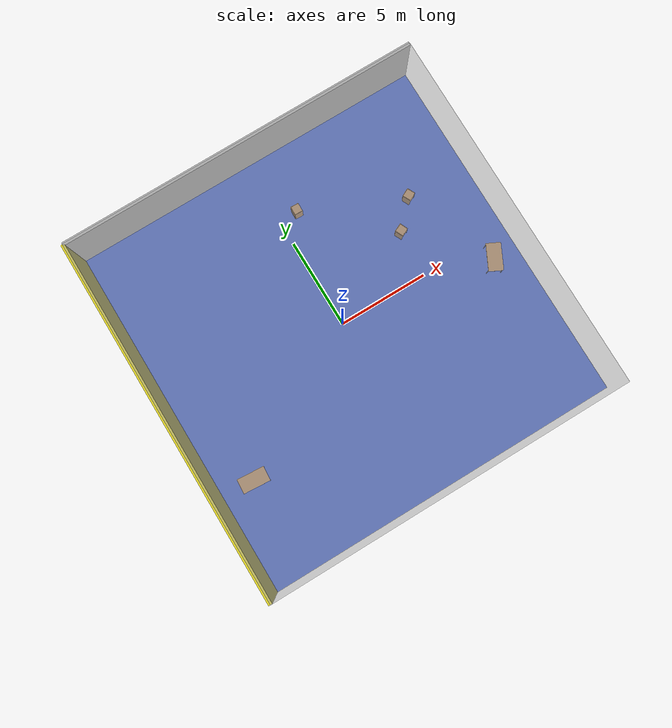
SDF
<sdf version="1.4">
 <world name="default">
  <physics type="ode">
   <max_step_size>0.001</max_step_size>
   <real_time_factor>1</real_time_factor>
   <real_time_update_rate>1000</real_time_update_rate>
   <gravity>0 0 -9.8</gravity>
  </physics>
  <scene><ambient>0.4 0.4 0.4 1</ambient><background>0.7 0.7 0.7 1</background><shadows>1</shadows></scene>
  <model name="Surrounding">
   <static>1</static>
   <link name="Ceiling">
    <collision name="Ceiling_Collision"><geometry><box><size>20 20 0.1</size></box></geometry></collision>
    <visual name="Ceiling_Visual">
     <geometry><box><size>20 20 0.1</size></box></geometry>
     <material>
      <script><uri>file://media/materials/scripts/gazebo.material</uri><name>Gazebo/GreyTransparent</name></script>
     </material>
    </visual>
    <pose>0 0 4.05 0 0 0</pose>
   </link>
   <link name="Wall_South">
    <collision name="Wall_South_Collision">
     <geometry><box><size>20 0 4</size></box></geometry>
     <pose>0 0 2 0 -0 0</pose>
    </collision>
    <visual name="Wall_South_Visual">
     <pose>0 0 2 0 -0 0</pose>
     <geometry><box><size>20 0 4</size></box></geometry>
     <material>
      <script>
       <uri>file://media/materials/scripts/gazebo.material</uri>
       <name>Gazebo/YellowTransparent</name>
      </script>
     </material>
    </visual>
    <velocity_decay><linear>0</linear><angular>0</angular></velocity_decay>
    <pose>0 -10 0 0 -0 0</pose>
   </link>
   <link name="Wall_East">
    <collision name="Wall_21_Collision">
     <geometry><box><size>20 0 4</size></box></geometry>
     <pose>0 0 2 0 -0 0</pose>
    </collision>
    <visual name="Wall_21_Visual">
     <pose>0 0 2 0 -0 0</pose>
     <geometry><box><size>20 0 4</size></box></geometry>
     <material>
      <script>
       <uri>file://media/materials/scripts/gazebo.material</uri>
       <name>Gazebo/OrangeTransparent</name>
      </script>
     </material>
    </visual>
    <velocity_decay><linear>0</linear><angular>0</angular></velocity_decay>
    <pose>10 0 0 0 -0 1.5708</pose>
   </link>
   <link name="Wall_North">
    <collision name="Wall_22_Collision">
     <geometry><box><size>20 0.2 4</size></box></geometry>
     <pose>0 0 2 0 -0 0</pose>
    </collision>
    <visual name="Wall_22_Visual">
     <pose>0 0 2 0 -0 0</pose>
     <geometry><box><size>20 0.2 4</size></box></geometry>
     <material>
      <script><uri>file://media/materials/scripts/gazebo.material</uri><name>Gazebo/CloudySky</name></script>
     </material>
    </visual>
    <velocity_decay><linear>0</linear><angular>0</angular></velocity_decay>
    <pose>0 10 0 0 -0 0</pose>
   </link>
   <link name="Wall_West">
    <collision name="Wall_23_Collision">
     <geometry><box><size>20 0.2 4</size></box></geometry>
     <pose>0 0 2 0 -0 0</pose>
    </collision>
    <visual name="Wall_23_Visual">
     <pose>0 0 2 0 -0 0</pose>
     <geometry><box><size>20 0.2 4</size></box></geometry>
     <material>
      <script><uri>file://media/materials/scripts/gazebo.material</uri><name>Gazebo/Yellow</name></script>
     </material>
    </visual>
    <velocity_decay><linear>0</linear><angular>0</angular></velocity_decay>
    <pose>-10 0 0 0 0 -1.5708</pose>
   </link>
   <link name="Ground_link">
    <collision name="collision">
     <pose>0 0 .05 0 -0 0</pose>
     <geometry><box><size>20 20 0.1</size></box></geometry>
    </collision>
    <visual name="visual">
     <pose>0 0 .05 0 -0 0</pose>
     <geometry><box><size>20 20 0.1</size></box></geometry>
     <material>
      <script><uri>file://media/materials/scripts/gazebo.material</uri><name>Gazebo/BlueLaser</name></script>
     </material>
    </visual>
   </link>
   <static>1</static>
  </model>
  <spherical_coordinates>
   <surface_model>EARTH_WGS84</surface_model>
   <latitude_deg>0</latitude_deg>
   <longitude_deg>0</longitude_deg>
   <elevation>0</elevation>
   <heading_deg>0</heading_deg>
  </spherical_coordinates>
  <light name="lightball_0" type="diffuse">
   <diffuse>0.8 0.8 0.8 1</diffuse>
   <specular>0.2 0.2 0.2 1</specular>
   <attenuation>
    <range>100</range>
    <constant>0.7</constant>
    <linear>0.01</linear>
    <quadratic>0.001</quadratic>
   </attenuation>
   <direction>-0.5 0.1 -0.9</direction>
   <pose>9.37528162601 -2.22802639416 3.4810622793 0 0 0</pose>
  </light>
  <light name="lightball_1" type="diffuse">
   <diffuse>0.8 0.8 0.8 1</diffuse>
   <specular>0.2 0.2 0.2 1</specular>
   <attenuation>
    <range>100</range>
    <constant>0.7</constant>
    <linear>0.01</linear>
    <quadratic>0.001</quadratic>
   </attenuation>
   <direction>-0.5 0.1 -0.9</direction>
   <pose>1.97921127919 -1.10898941533 3.27158633737 0 0 0</pose>
  </light>
  <include><uri>model://table</uri><pose>-8.03363344337 -4.58788490743 0 0 0 3.06965282005</pose></include>
  <include><uri>model://cabinet</uri><pose>1.00738062585 6.32114969001 0 0 0 3.10891634616</pose></include>
  <include><uri>model://cabinet</uri><pose>5.11698972903 2.51590057127 0 0 0 2.00233043755</pose></include>
  <include><uri>model://table</uri><pose>8.50680798594 -1.21738615688 0 0 0 1.10831165844</pose></include>
  <include><uri>model://cabinet</uri><pose>6.45168061448 3.92910564522 0 0 0 2.03867620664</pose></include>
 </world>
</sdf>

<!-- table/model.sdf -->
<sdf version="1.5">
  <model name="table">
    <static>true</static>
    <link name="link">
      <collision name="surface">
        <pose>0 0 1.0 0 0 0</pose>
        <geometry>
          <box>
            <size>1.5 0.8 0.03</size>
          </box>
        </geometry>
        <surface>
          <friction>
            <ode>
              <mu>0.6</mu>
              <mu2>0.6</mu2>
            </ode>
          </friction>
        </surface>
      </collision>
      <visual name="visual1">
        <pose>0 0 1.0 0 0 0</pose>
        <geometry>
          <box>
            <size>1.5 0.8 0.03</size>
          </box>
        </geometry>
        <material>
          <script>
            <uri>model://media/materials/scripts/gazebo.material</uri>
            <name>Gazebo/Wood</name>
          </script>
        </material>
      </visual>
      <collision name="front_left_leg">
        <pose>0.68 0.38 0.5 0 0 0</pose>
        <geometry>
          <cylinder>
            <radius>0.02</radius>
            <length>1.0</length>
          </cylinder>
        </geometry>
      </collision>
      <visual name="front_left_leg">
        <pose>0.68 0.38 0.5 0 0 0</pose>
        <geometry>
          <cylinder>
            <radius>0.02</radius>
            <length>1.0</length>
          </cylinder>
        </geometry>
        <material>
          <script>
            <uri>model://media/materials/scripts/gazebo.material</uri>
            <name>Gazebo/Grey</name>
          </script>
        </material>
      </visual>
      <collision name="front_right_leg">
        <pose>0.68 -0.38 0.5 0 0 0</pose>
        <geometry>
          <cylinder>
            <radius>0.02</radius>
            <length>1.0</length>
          </cylinder>
        </geometry>
      </collision>
      <visual name="front_right_leg">
        <pose>0.68 -0.38 0.5 0 0 0</pose>
        <geometry>
          <cylinder>
            <radius>0.02</radius>
            <length>1.0</length>
          </cylinder>
        </geometry>
        <material>
          <script>
            <uri>model://media/materials/scripts/gazebo.material</uri>
            <name>Gazebo/Grey</name>
          </script>
        </material>
      </visual>
      <collision name="back_right_leg">
        <pose>-0.68 -0.38 0.5 0 0 0</pose>
        <geometry>
          <cylinder>
            <radius>0.02</radius>
            <length>1.0</length>
          </cylinder>
        </geometry>
      </collision>
      <visual name="back_right_leg">
        <pose>-0.68 -0.38 0.5 0 0 0</pose>
        <geometry>
          <cylinder>
            <radius>0.02</radius>
            <length>1.0</length>
          </cylinder>
        </geometry>
        <material>
          <script>
            <uri>model://media/materials/scripts/gazebo.material</uri>
            <name>Gazebo/Grey</name>
          </script>
        </material>
      </visual>
      <collision name="back_left_leg">
        <pose>-0.68 0.38 0.5 0 0 0</pose>
        <geometry>
          <cylinder>
            <radius>0.02</radius>
            <length>1.0</length>
          </cylinder>
        </geometry>
      </collision>
      <visual name="back_left_leg">
        <pose>-0.68 0.38 0.5 0 0 0</pose>
        <geometry>
          <cylinder>
            <radius>0.02</radius>
            <length>1.0</length>
          </cylinder>
        </geometry>
        <material>
          <script>
            <uri>model://media/materials/scripts/gazebo.material</uri>
            <name>Gazebo/Grey</name>
          </script>
        </material>
      </visual>
    </link>
  </model>
</sdf>

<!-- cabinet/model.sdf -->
<sdf version="1.5">
  <model name="cabinet">
    <static>true</static>
    <link name="cabinet_bottom_plate">
      <inertial>
        <pose>0 0 -1 0 0 0</pose>
        <inertia>
          <ixx>2.050000</ixx>
          <ixy>0</ixy>
          <ixz>0</ixz>
          <iyy>2.050000</iyy>
          <iyz>0</iyz>
          <izz>2.050000</izz>
        </inertia>
        <mass>25.000000</mass>
      </inertial>
      <collision name="cabinet_bottom_plate_geom">
        <pose>0 0 0.010000 0 0 0</pose>
        <geometry>
          <box>
            <size>0.450000 0.450000 0.020000</size>
          </box>
        </geometry>
      </collision>
      <visual name="cabinet_bottom_plate_geom_visual">
        <pose>0 0 0.010000 0 0 0</pose>
        <geometry>
          <box>
            <size>0.450000 0.450000 0.020000</size>
          </box>
        </geometry>
        <material>
          <script>
            <uri>model://media/materials/scripts/gazebo.material</uri>
            <name>Gazebo/Wood</name>
          </script>
        </material>
      </visual>
      <collision name="cabinet_bottom_plate_geom_cabinet_back_plate">
        <pose>0.235000 0 0.510000 0 0 0</pose>
        <geometry>
          <box>
            <size>0.020000 0.450000 1.020000</size>
          </box>
        </geometry>
      </collision>
      <visual name="cabinet_bottom_plate_geom_cabinet_back_plate_visual">
        <pose>0.235000 0 0.510000 0 0 0</pose>
        <geometry>
          <box>
            <size>0.020000 0.450000 1.020000</size>
          </box>
        </geometry>
        <material>
          <script>
            <uri>model://media/materials/scripts/gazebo.material</uri>
            <name>Gazebo/Wood</name>
          </script>
        </material>
      </visual>
      <collision name="cabinet_bottom_plate_geom_cabinet_left_plate">
        <pose>0 0.235000 0.510000 0 0 0</pose>
        <geometry>
          <box>
            <size>0.450000 0.020000 1.020000</size>
          </box>
        </geometry>
      </collision>
      <visual name="cabinet_bottom_plate_geom_cabinet_left_plate_visual">
        <pose>0 0.235000 0.510000 0 0 0</pose>
        <geometry>
          <box>
            <size>0.450000 0.020000 1.020000</size>
          </box>
        </geometry>
        <material>
          <script>
            <uri>model://media/materials/scripts/gazebo.material</uri>
            <name>Gazebo/Wood</name>
          </script>
        </material>
      </visual>
      <collision name="cabinet_bottom_plate_geom_cabinet_middle_plate">
        <pose>0 0 0.510000 0 0 0</pose>
        <geometry>
          <box>
            <size>0.450000 0.450000 0.020000</size>
          </box>
        </geometry>
      </collision>
      <visual name="cabinet_bottom_plate_geom_cabinet_middle_plate_visual">
        <pose>0 0 0.510000 0 0 0</pose>
        <geometry>
          <box>
            <size>0.450000 0.450000 0.020000</size>
          </box>
        </geometry>
        <material>
          <script>
            <uri>model://media/materials/scripts/gazebo.material</uri>
            <name>Gazebo/Wood</name>
          </script>
        </material>
      </visual>
      <collision name="cabinet_bottom_plate_geom_cabinet_right_plate">
        <pose>0 -0.235000 0.510000 0 0 0</pose>
        <geometry>
          <box>
            <size>0.450000 0.020000 1.020000</size>
          </box>
        </geometry>
      </collision>
      <visual name="cabinet_bottom_plate_geom_cabinet_right_plate_visual">
        <pose>0 -0.235000 0.510000 0 0 0</pose>
        <geometry>
          <box>
            <size>0.450000 0.020000 1.020000</size>
          </box>
        </geometry>
        <material>
          <script>
            <uri>model://media/materials/scripts/gazebo.material</uri>
            <name>Gazebo/Wood</name>
          </script>
        </material>
      </visual>
      <collision name="cabinet_bottom_plate_geom_cabinet_top_plate">
        <pose>0 0 1.010000 0 0 0</pose>
        <geometry>
          <box>
            <size>0.450000 0.450000 0.020000</size>
          </box>
        </geometry>
      </collision>
      <visual name="cabinet_bottom_plate_geom_cabinet_top_plate_visual">
        <pose>0 0 1.010000 0 0 0</pose>
        <geometry>
          <box>
            <size>0.450000 0.450000 0.020000</size>
          </box>
        </geometry>
        <material>
          <script>
            <uri>model://media/materials/scripts/gazebo.material</uri>
            <name>Gazebo/Wood</name>
          </script>
        </material>
      </visual>
    </link>
  </model>
</sdf>
